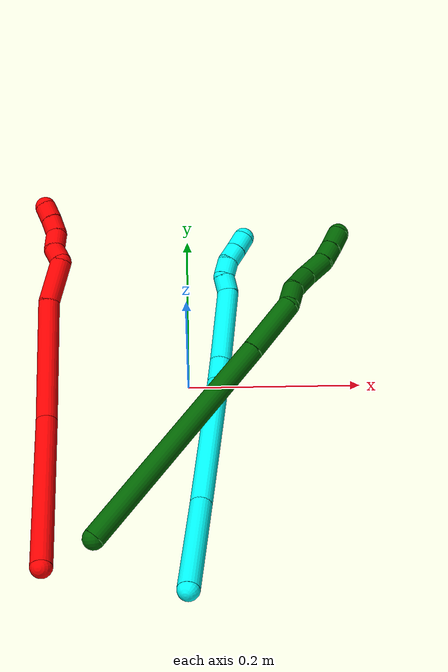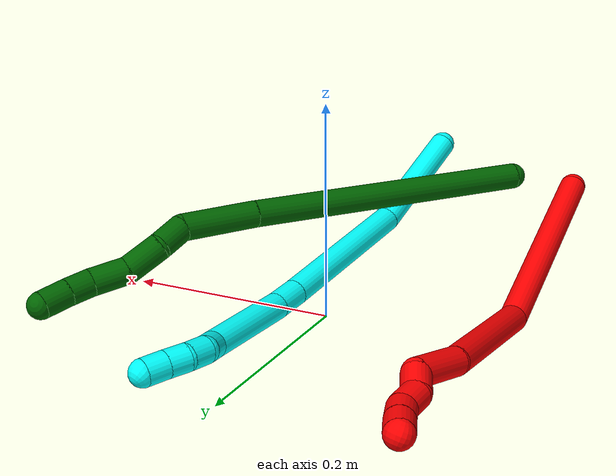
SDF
<sdf version="1.7">
 <world name="default">
  <model name="2">
   <static>0</static>
   <link name="2">
    <collision name="collision-cylinder-e_1_1_4">
     <pose>0.020892 0.07647 -0.069784 -2.31051 0.199134 -0.445302</pose>
     <geometry><cylinder><radius>0.0125</radius><length>0.211224</length></cylinder></geometry>
     <surface>
      <friction><ode><mu>1.16</mu><mu2>1.16</mu2><slip1>0</slip1><slip2>0</slip2></ode></friction>
      <contact><ode><kp>1e+06</kp><kd>1</kd><max_vel>0</max_vel><min_depth>0.001</min_depth></ode></contact>
     </surface>
    </collision>
    <visual name="visual-cylinder-e_1_1_4">
     <pose>0.020892 0.07647 -0.069784 -2.31051 0.199134 -0.445302</pose>
     <geometry><cylinder><radius>0.0125</radius><length>0.211224</length></cylinder></geometry>
     <material><ambient>1 0 0 1</ambient></material>
    </visual>
    <collision name="collision-cylinder-e_2_4_5">
     <pose>0.071623 0.216744 -0.161274 -1.89872 0.416801 -0.574312</pose>
     <geometry><cylinder><radius>0.0125</radius><length>0.147412</length></cylinder></geometry>
     <surface>
      <friction><ode><mu>1.16</mu><mu2>1.16</mu2><slip1>0</slip1><slip2>0</slip2></ode></friction>
      <contact><ode><kp>1e+06</kp><kd>1</kd><max_vel>0</max_vel><min_depth>0.001</min_depth></ode></contact>
     </surface>
    </collision>
    <visual name="visual-cylinder-e_2_4_5">
     <pose>0.071623 0.216744 -0.161274 -1.89872 0.416801 -0.574312</pose>
     <geometry><cylinder><radius>0.0125</radius><length>0.147412</length></cylinder></geometry>
     <material><ambient>1 0 0 1</ambient></material>
    </visual>
    <collision name="collision-cylinder-e_3_5_6">
     <pose>0.117778 0.299456 -0.191004 -1.97207 0.67132 -0.970003</pose>
     <geometry><cylinder><radius>0.0125</radius><length>0.052462</length></cylinder></geometry>
     <surface>
      <friction><ode><mu>1.16</mu><mu2>1.16</mu2><slip1>0</slip1><slip2>0</slip2></ode></friction>
      <contact><ode><kp>1e+06</kp><kd>1</kd><max_vel>0</max_vel><min_depth>0.001</min_depth></ode></contact>
     </surface>
    </collision>
    <visual name="visual-cylinder-e_3_5_6">
     <pose>0.117778 0.299456 -0.191004 -1.97207 0.67132 -0.970003</pose>
     <geometry><cylinder><radius>0.0125</radius><length>0.052462</length></cylinder></geometry>
     <material><ambient>1 0 0 1</ambient></material>
    </visual>
    <collision name="collision-cylinder-e_4_6_7">
     <pose>0.132892 0.328555 -0.205245 -2.11872 -0.100395 0.178554</pose>
     <geometry><cylinder><radius>0.0125</radius><length>0.024</length></cylinder></geometry>
     <surface>
      <friction><ode><mu>1.16</mu><mu2>1.16</mu2><slip1>0</slip1><slip2>0</slip2></ode></friction>
      <contact><ode><kp>1e+06</kp><kd>1</kd><max_vel>0</max_vel><min_depth>0.001</min_depth></ode></contact>
     </surface>
    </collision>
    <visual name="visual-cylinder-e_4_6_7">
     <pose>0.132892 0.328555 -0.205245 -2.11872 -0.100395 0.178554</pose>
     <geometry><cylinder><radius>0.0125</radius><length>0.024</length></cylinder></geometry>
     <material><ambient>1 0 0 1</ambient></material>
    </visual>
    <collision name="collision-cylinder-e_5_7_8">
     <pose>0.136376 0.347811 -0.217166 -2.1322 0.412532 -0.724153</pose>
     <geometry><cylinder><radius>0.0125</radius><length>0.023378</length></cylinder></geometry>
     <surface>
      <friction><ode><mu>1.16</mu><mu2>1.16</mu2><slip1>0</slip1><slip2>0</slip2></ode></friction>
      <contact><ode><kp>1e+06</kp><kd>1</kd><max_vel>0</max_vel><min_depth>0.001</min_depth></ode></contact>
     </surface>
    </collision>
    <visual name="visual-cylinder-e_5_7_8">
     <pose>0.136376 0.347811 -0.217166 -2.1322 0.412532 -0.724153</pose>
     <geometry><cylinder><radius>0.0125</radius><length>0.023378</length></cylinder></geometry>
     <material><ambient>1 0 0 1</ambient></material>
    </visual>
    <collision name="collision-cylinder-e_6_8_9">
     <pose>0.141906 0.366659 -0.22593 -1.8742 0.082114 -0.111697</pose>
     <geometry><cylinder><radius>0.0125</radius><length>0.020573</length></cylinder></geometry>
     <surface>
      <friction><ode><mu>1.16</mu><mu2>1.16</mu2><slip1>0</slip1><slip2>0</slip2></ode></friction>
      <contact><ode><kp>1e+06</kp><kd>1</kd><max_vel>0</max_vel><min_depth>0.001</min_depth></ode></contact>
     </surface>
    </collision>
    <visual name="visual-cylinder-e_6_8_9">
     <pose>0.141906 0.366659 -0.22593 -1.8742 0.082114 -0.111697</pose>
     <geometry><cylinder><radius>0.0125</radius><length>0.020573</length></cylinder></geometry>
     <material><ambient>1 0 0 1</ambient></material>
    </visual>
    <collision name="collision-cylinder-e_7_9_2">
     <pose>0.142867 0.386433 -0.232143 -1.87626 0.011246 -0.015338</pose>
     <geometry><cylinder><radius>0.0125</radius><length>0.020952</length></cylinder></geometry>
     <surface>
      <friction><ode><mu>1.16</mu><mu2>1.16</mu2><slip1>0</slip1><slip2>0</slip2></ode></friction>
      <contact><ode><kp>1e+06</kp><kd>1</kd><max_vel>0</max_vel><min_depth>0.001</min_depth></ode></contact>
     </surface>
    </collision>
    <visual name="visual-cylinder-e_7_9_2">
     <pose>0.142867 0.386433 -0.232143 -1.87626 0.011246 -0.015338</pose>
     <geometry><cylinder><radius>0.0125</radius><length>0.020952</length></cylinder></geometry>
     <material><ambient>1 0 0 1</ambient></material>
    </visual>
    <collision name="collision-sphere-2">
     <pose>0.142985 0.396423 -0.235293 0 -0 0</pose>
     <geometry><sphere><radius>0.0125</radius></sphere></geometry>
     <surface>
      <friction><ode><mu>1.16</mu><mu2>1.16</mu2><slip1>0</slip1><slip2>0</slip2></ode></friction>
      <contact><ode><kp>1e+06</kp><kd>1</kd><max_vel>0</max_vel><min_depth>0.001</min_depth></ode></contact>
     </surface>
    </collision>
    <visual name="visual-sphere-2">
     <pose>0.142985 0.396423 -0.235293 0 -0 0</pose>
     <geometry><sphere><radius>0.0125</radius></sphere></geometry>
     <material><ambient>1 0 0 1</ambient></material>
    </visual>
    <collision name="collision-sphere-9">
     <pose>0.142749 0.376443 -0.228992 0 -0 0</pose>
     <geometry><sphere><radius>0.0125</radius></sphere></geometry>
     <surface>
      <friction><ode><mu>1.16</mu><mu2>1.16</mu2><slip1>0</slip1><slip2>0</slip2></ode></friction>
      <contact><ode><kp>1e+06</kp><kd>1</kd><max_vel>0</max_vel><min_depth>0.001</min_depth></ode></contact>
     </surface>
    </collision>
    <visual name="visual-sphere-9">
     <pose>0.142749 0.376443 -0.228992 0 -0 0</pose>
     <geometry><sphere><radius>0.0125</radius></sphere></geometry>
     <material><ambient>1 0 0 1</ambient></material>
    </visual>
    <collision name="collision-sphere-4">
     <pose>0.041784 0.15294 -0.139568 0 -0 0</pose>
     <geometry><sphere><radius>0.0125</radius></sphere></geometry>
     <surface>
      <friction><ode><mu>1.16</mu><mu2>1.16</mu2><slip1>0</slip1><slip2>0</slip2></ode></friction>
      <contact><ode><kp>1e+06</kp><kd>1</kd><max_vel>0</max_vel><min_depth>0.001</min_depth></ode></contact>
     </surface>
    </collision>
    <visual name="visual-sphere-4">
     <pose>0.041784 0.15294 -0.139568 0 -0 0</pose>
     <geometry><sphere><radius>0.0125</radius></sphere></geometry>
     <material><ambient>1 0 0 1</ambient></material>
    </visual>
    <collision name="collision-sphere-1">
     <geometry><sphere><radius>0.0125</radius></sphere></geometry>
     <surface>
      <friction><ode><mu>1.16</mu><mu2>1.16</mu2><slip1>0</slip1><slip2>0</slip2></ode></friction>
      <contact><ode><kp>1e+06</kp><kd>1</kd><max_vel>0</max_vel><min_depth>0.001</min_depth></ode></contact>
     </surface>
    </collision>
    <visual name="visual-sphere-1">
     <geometry><sphere><radius>0.0125</radius></sphere></geometry>
     <material><ambient>1 0 0 1</ambient></material>
    </visual>
    <collision name="collision-sphere-8">
     <pose>0.141062 0.356876 -0.222867 0 -0 0</pose>
     <geometry><sphere><radius>0.0125</radius></sphere></geometry>
     <surface>
      <friction><ode><mu>1.16</mu><mu2>1.16</mu2><slip1>0</slip1><slip2>0</slip2></ode></friction>
      <contact><ode><kp>1e+06</kp><kd>1</kd><max_vel>0</max_vel><min_depth>0.001</min_depth></ode></contact>
     </surface>
    </collision>
    <visual name="visual-sphere-8">
     <pose>0.141062 0.356876 -0.222867 0 -0 0</pose>
     <geometry><sphere><radius>0.0125</radius></sphere></geometry>
     <material><ambient>1 0 0 1</ambient></material>
    </visual>
    <collision name="collision-sphere-5">
     <pose>0.101462 0.280548 -0.182981 0 -0 0</pose>
     <geometry><sphere><radius>0.0125</radius></sphere></geometry>
     <surface>
      <friction><ode><mu>1.16</mu><mu2>1.16</mu2><slip1>0</slip1><slip2>0</slip2></ode></friction>
      <contact><ode><kp>1e+06</kp><kd>1</kd><max_vel>0</max_vel><min_depth>0.001</min_depth></ode></contact>
     </surface>
    </collision>
    <visual name="visual-sphere-5">
     <pose>0.101462 0.280548 -0.182981 0 -0 0</pose>
     <geometry><sphere><radius>0.0125</radius></sphere></geometry>
     <material><ambient>1 0 0 1</ambient></material>
    </visual>
    <collision name="collision-sphere-6">
     <pose>0.134095 0.318363 -0.199026 0 -0 0</pose>
     <geometry><sphere><radius>0.0125</radius></sphere></geometry>
     <surface>
      <friction><ode><mu>1.16</mu><mu2>1.16</mu2><slip1>0</slip1><slip2>0</slip2></ode></friction>
      <contact><ode><kp>1e+06</kp><kd>1</kd><max_vel>0</max_vel><min_depth>0.001</min_depth></ode></contact>
     </surface>
    </collision>
    <visual name="visual-sphere-6">
     <pose>0.134095 0.318363 -0.199026 0 -0 0</pose>
     <geometry><sphere><radius>0.0125</radius></sphere></geometry>
     <material><ambient>1 0 0 1</ambient></material>
    </visual>
    <collision name="collision-sphere-7">
     <pose>0.131689 0.338746 -0.211465 0 -0 0</pose>
     <geometry><sphere><radius>0.0125</radius></sphere></geometry>
     <surface>
      <friction><ode><mu>1.16</mu><mu2>1.16</mu2><slip1>0</slip1><slip2>0</slip2></ode></friction>
      <contact><ode><kp>1e+06</kp><kd>1</kd><max_vel>0</max_vel><min_depth>0.001</min_depth></ode></contact>
     </surface>
    </collision>
    <visual name="visual-sphere-7">
     <pose>0.131689 0.338746 -0.211465 0 -0 0</pose>
     <geometry><sphere><radius>0.0125</radius></sphere></geometry>
     <material><ambient>1 0 0 1</ambient></material>
    </visual>
    <inertial>
     <pose>0.06688 0.190938 -0.136097 0 -0 0</pose>
     <mass>0.5</mass>
     <inertia>
      <ixx>0.000455</ixx>
      <ixy>0</ixy>
      <ixz>0</ixz>
      <iyy>-0.000898</iyy>
      <iyz>0</iyz>
      <izz>-0.001122</izz>
     </inertia>
    </inertial>
   </link>
   <pose>-0.155997 -0.246276 0.076869 0.306166 -0.378527 0.399296</pose>
  </model>
  <model name="3">
   <static>0</static>
   <link name="3">
    <collision name="collision-cylinder-e_1_1_4">
     <pose>-0.008019 0.012208 -0.061747 -2.9464 -0.126727 1.15</pose>
     <geometry><cylinder><radius>0.0125</radius><length>0.126901</length></cylinder></geometry>
     <surface>
      <friction><ode><mu>1.16</mu><mu2>1.16</mu2><slip1>0</slip1><slip2>0</slip2></ode></friction>
      <contact><ode><kp>1e+06</kp><kd>1</kd><max_vel>0</max_vel><min_depth>0.001</min_depth></ode></contact>
     </surface>
    </collision>
    <visual name="visual-cylinder-e_1_1_4">
     <pose>-0.008019 0.012208 -0.061747 -2.9464 -0.126727 1.15</pose>
     <geometry><cylinder><radius>0.0125</radius><length>0.126901</length></cylinder></geometry>
     <material><ambient>0.003922 1 0.996078 1</ambient></material>
    </visual>
    <collision name="collision-cylinder-e_2_4_5">
     <pose>-0.020043 0.05982 -0.197854 -2.69724 -0.048579 0.214259</pose>
     <geometry><cylinder><radius>0.0125</radius><length>0.164912</length></cylinder></geometry>
     <surface>
      <friction><ode><mu>1.16</mu><mu2>1.16</mu2><slip1>0</slip1><slip2>0</slip2></ode></friction>
      <contact><ode><kp>1e+06</kp><kd>1</kd><max_vel>0</max_vel><min_depth>0.001</min_depth></ode></contact>
     </surface>
    </collision>
    <visual name="visual-cylinder-e_2_4_5">
     <pose>-0.020043 0.05982 -0.197854 -2.69724 -0.048579 0.214259</pose>
     <geometry><cylinder><radius>0.0125</radius><length>0.164912</length></cylinder></geometry>
     <material><ambient>0.003922 1 0.996078 1</ambient></material>
    </visual>
    <collision name="collision-cylinder-e_3_5_6">
     <pose>-0.024737 0.102277 -0.285279 -2.64659 -0.046413 0.1832</pose>
     <geometry><cylinder><radius>0.0125</radius><length>0.029724</length></cylinder></geometry>
     <surface>
      <friction><ode><mu>1.16</mu><mu2>1.16</mu2><slip1>0</slip1><slip2>0</slip2></ode></friction>
      <contact><ode><kp>1e+06</kp><kd>1</kd><max_vel>0</max_vel><min_depth>0.001</min_depth></ode></contact>
     </surface>
    </collision>
    <visual name="visual-cylinder-e_3_5_6">
     <pose>-0.024737 0.102277 -0.285279 -2.64659 -0.046413 0.1832</pose>
     <geometry><cylinder><radius>0.0125</radius><length>0.029724</length></cylinder></geometry>
     <material><ambient>0.003922 1 0.996078 1</ambient></material>
    </visual>
    <collision name="collision-cylinder-e_4_6_7">
     <pose>-0.027013 0.135524 -0.338416 -2.56263 -0.03314 0.111161</pose>
     <geometry><cylinder><radius>0.0125</radius><length>0.095802</length></cylinder></geometry>
     <surface>
      <friction><ode><mu>1.16</mu><mu2>1.16</mu2><slip1>0</slip1><slip2>0</slip2></ode></friction>
      <contact><ode><kp>1e+06</kp><kd>1</kd><max_vel>0</max_vel><min_depth>0.001</min_depth></ode></contact>
     </surface>
    </collision>
    <visual name="visual-cylinder-e_4_6_7">
     <pose>-0.027013 0.135524 -0.338416 -2.56263 -0.03314 0.111161</pose>
     <geometry><cylinder><radius>0.0125</radius><length>0.095802</length></cylinder></geometry>
     <material><ambient>0.003922 1 0.996078 1</ambient></material>
    </visual>
    <collision name="collision-cylinder-e_5_7_8">
     <pose>-0.031432 0.169513 -0.384494 -2.22731 -0.280189 0.558396</pose>
     <geometry><cylinder><radius>0.0125</radius><length>0.020478</length></cylinder></geometry>
     <surface>
      <friction><ode><mu>1.16</mu><mu2>1.16</mu2><slip1>0</slip1><slip2>0</slip2></ode></friction>
      <contact><ode><kp>1e+06</kp><kd>1</kd><max_vel>0</max_vel><min_depth>0.001</min_depth></ode></contact>
     </surface>
    </collision>
    <visual name="visual-cylinder-e_5_7_8">
     <pose>-0.031432 0.169513 -0.384494 -2.22731 -0.280189 0.558396</pose>
     <geometry><cylinder><radius>0.0125</radius><length>0.020478</length></cylinder></geometry>
     <material><ambient>0.003922 1 0.996078 1</ambient></material>
    </visual>
    <collision name="collision-cylinder-e_6_8_9">
     <pose>-0.032998 0.183154 -0.399218 -2.55089 0.119933 -0.389657</pose>
     <geometry><cylinder><radius>0.0125</radius><length>0.021147</length></cylinder></geometry>
     <surface>
      <friction><ode><mu>1.16</mu><mu2>1.16</mu2><slip1>0</slip1><slip2>0</slip2></ode></friction>
      <contact><ode><kp>1e+06</kp><kd>1</kd><max_vel>0</max_vel><min_depth>0.001</min_depth></ode></contact>
     </surface>
    </collision>
    <visual name="visual-cylinder-e_6_8_9">
     <pose>-0.032998 0.183154 -0.399218 -2.55089 0.119933 -0.389657</pose>
     <geometry><cylinder><radius>0.0125</radius><length>0.021147</length></cylinder></geometry>
     <material><ambient>0.003922 1 0.996078 1</ambient></material>
    </visual>
    <collision name="collision-cylinder-e_7_9_10">
     <pose>-0.028309 0.192856 -0.41662 -2.72369 0.345952 -1.3784</pose>
     <geometry><cylinder><radius>0.0125</radius><length>0.020197</length></cylinder></geometry>
     <surface>
      <friction><ode><mu>1.16</mu><mu2>1.16</mu2><slip1>0</slip1><slip2>0</slip2></ode></friction>
      <contact><ode><kp>1e+06</kp><kd>1</kd><max_vel>0</max_vel><min_depth>0.001</min_depth></ode></contact>
     </surface>
    </collision>
    <visual name="visual-cylinder-e_7_9_10">
     <pose>-0.028309 0.192856 -0.41662 -2.72369 0.345952 -1.3784</pose>
     <geometry><cylinder><radius>0.0125</radius><length>0.020197</length></cylinder></geometry>
     <material><ambient>0.003922 1 0.996078 1</ambient></material>
    </visual>
    <collision name="collision-cylinder-e_8_10_2">
     <pose>-0.021718 0.2007 -0.434392 -2.72806 0.308739 -1.2765</pose>
     <geometry><cylinder><radius>0.0125</radius><length>0.020838</length></cylinder></geometry>
     <surface>
      <friction><ode><mu>1.16</mu><mu2>1.16</mu2><slip1>0</slip1><slip2>0</slip2></ode></friction>
      <contact><ode><kp>1e+06</kp><kd>1</kd><max_vel>0</max_vel><min_depth>0.001</min_depth></ode></contact>
     </surface>
    </collision>
    <visual name="visual-cylinder-e_8_10_2">
     <pose>-0.021718 0.2007 -0.434392 -2.72806 0.308739 -1.2765</pose>
     <geometry><cylinder><radius>0.0125</radius><length>0.020838</length></cylinder></geometry>
     <material><ambient>0.003922 1 0.996078 1</ambient></material>
    </visual>
    <collision name="collision-sphere-2">
     <pose>-0.018553 0.204689 -0.443482 0 -0 0</pose>
     <geometry><sphere><radius>0.0125</radius></sphere></geometry>
     <surface>
      <friction><ode><mu>1.16</mu><mu2>1.16</mu2><slip1>0</slip1><slip2>0</slip2></ode></friction>
      <contact><ode><kp>1e+06</kp><kd>1</kd><max_vel>0</max_vel><min_depth>0.001</min_depth></ode></contact>
     </surface>
    </collision>
    <visual name="visual-sphere-2">
     <pose>-0.018553 0.204689 -0.443482 0 -0 0</pose>
     <geometry><sphere><radius>0.0125</radius></sphere></geometry>
     <material><ambient>0.003922 1 0.996078 1</ambient></material>
    </visual>
    <collision name="collision-sphere-10">
     <pose>-0.024884 0.196711 -0.425302 0 -0 0</pose>
     <geometry><sphere><radius>0.0125</radius></sphere></geometry>
     <surface>
      <friction><ode><mu>1.16</mu><mu2>1.16</mu2><slip1>0</slip1><slip2>0</slip2></ode></friction>
      <contact><ode><kp>1e+06</kp><kd>1</kd><max_vel>0</max_vel><min_depth>0.001</min_depth></ode></contact>
     </surface>
    </collision>
    <visual name="visual-sphere-10">
     <pose>-0.024884 0.196711 -0.425302 0 -0 0</pose>
     <geometry><sphere><radius>0.0125</radius></sphere></geometry>
     <material><ambient>0.003922 1 0.996078 1</ambient></material>
    </visual>
    <collision name="collision-sphere-9">
     <pose>-0.031733 0.189 -0.407937 0 -0 0</pose>
     <geometry><sphere><radius>0.0125</radius></sphere></geometry>
     <surface>
      <friction><ode><mu>1.16</mu><mu2>1.16</mu2><slip1>0</slip1><slip2>0</slip2></ode></friction>
      <contact><ode><kp>1e+06</kp><kd>1</kd><max_vel>0</max_vel><min_depth>0.001</min_depth></ode></contact>
     </surface>
    </collision>
    <visual name="visual-sphere-9">
     <pose>-0.031733 0.189 -0.407937 0 -0 0</pose>
     <geometry><sphere><radius>0.0125</radius></sphere></geometry>
     <material><ambient>0.003922 1 0.996078 1</ambient></material>
    </visual>
    <collision name="collision-sphere-4">
     <pose>-0.016039 0.024416 -0.123493 0 -0 0</pose>
     <geometry><sphere><radius>0.0125</radius></sphere></geometry>
     <surface>
      <friction><ode><mu>1.16</mu><mu2>1.16</mu2><slip1>0</slip1><slip2>0</slip2></ode></friction>
      <contact><ode><kp>1e+06</kp><kd>1</kd><max_vel>0</max_vel><min_depth>0.001</min_depth></ode></contact>
     </surface>
    </collision>
    <visual name="visual-sphere-4">
     <pose>-0.016039 0.024416 -0.123493 0 -0 0</pose>
     <geometry><sphere><radius>0.0125</radius></sphere></geometry>
     <material><ambient>0.003922 1 0.996078 1</ambient></material>
    </visual>
    <collision name="collision-sphere-1">
     <geometry><sphere><radius>0.0125</radius></sphere></geometry>
     <surface>
      <friction><ode><mu>1.16</mu><mu2>1.16</mu2><slip1>0</slip1><slip2>0</slip2></ode></friction>
      <contact><ode><kp>1e+06</kp><kd>1</kd><max_vel>0</max_vel><min_depth>0.001</min_depth></ode></contact>
     </surface>
    </collision>
    <visual name="visual-sphere-1">
     <geometry><sphere><radius>0.0125</radius></sphere></geometry>
     <material><ambient>0.003922 1 0.996078 1</ambient></material>
    </visual>
    <collision name="collision-sphere-8">
     <pose>-0.034263 0.177307 -0.3905 0 -0 0</pose>
     <geometry><sphere><radius>0.0125</radius></sphere></geometry>
     <surface>
      <friction><ode><mu>1.16</mu><mu2>1.16</mu2><slip1>0</slip1><slip2>0</slip2></ode></friction>
      <contact><ode><kp>1e+06</kp><kd>1</kd><max_vel>0</max_vel><min_depth>0.001</min_depth></ode></contact>
     </surface>
    </collision>
    <visual name="visual-sphere-8">
     <pose>-0.034263 0.177307 -0.3905 0 -0 0</pose>
     <geometry><sphere><radius>0.0125</radius></sphere></geometry>
     <material><ambient>0.003922 1 0.996078 1</ambient></material>
    </visual>
    <collision name="collision-sphere-5">
     <pose>-0.024047 0.095224 -0.272215 0 -0 0</pose>
     <geometry><sphere><radius>0.0125</radius></sphere></geometry>
     <surface>
      <friction><ode><mu>1.16</mu><mu2>1.16</mu2><slip1>0</slip1><slip2>0</slip2></ode></friction>
      <contact><ode><kp>1e+06</kp><kd>1</kd><max_vel>0</max_vel><min_depth>0.001</min_depth></ode></contact>
     </surface>
    </collision>
    <visual name="visual-sphere-5">
     <pose>-0.024047 0.095224 -0.272215 0 -0 0</pose>
     <geometry><sphere><radius>0.0125</radius></sphere></geometry>
     <material><ambient>0.003922 1 0.996078 1</ambient></material>
    </visual>
    <collision name="collision-sphere-6">
     <pose>-0.025426 0.109329 -0.298343 0 -0 0</pose>
     <geometry><sphere><radius>0.0125</radius></sphere></geometry>
     <surface>
      <friction><ode><mu>1.16</mu><mu2>1.16</mu2><slip1>0</slip1><slip2>0</slip2></ode></friction>
      <contact><ode><kp>1e+06</kp><kd>1</kd><max_vel>0</max_vel><min_depth>0.001</min_depth></ode></contact>
     </surface>
    </collision>
    <visual name="visual-sphere-6">
     <pose>-0.025426 0.109329 -0.298343 0 -0 0</pose>
     <geometry><sphere><radius>0.0125</radius></sphere></geometry>
     <material><ambient>0.003922 1 0.996078 1</ambient></material>
    </visual>
    <collision name="collision-sphere-7">
     <pose>-0.0286 0.161719 -0.378488 0 -0 0</pose>
     <geometry><sphere><radius>0.0125</radius></sphere></geometry>
     <surface>
      <friction><ode><mu>1.16</mu><mu2>1.16</mu2><slip1>0</slip1><slip2>0</slip2></ode></friction>
      <contact><ode><kp>1e+06</kp><kd>1</kd><max_vel>0</max_vel><min_depth>0.001</min_depth></ode></contact>
     </surface>
    </collision>
    <visual name="visual-sphere-7">
     <pose>-0.0286 0.161719 -0.378488 0 -0 0</pose>
     <geometry><sphere><radius>0.0125</radius></sphere></geometry>
     <material><ambient>0.003922 1 0.996078 1</ambient></material>
    </visual>
    <inertial>
     <pose>-0.020024 0.085719 -0.230294 0 -0 0</pose>
     <mass>0.5</mass>
     <inertia>
      <ixx>0.00077</ixx>
      <ixy>0</ixy>
      <ixz>0</ixz>
      <iyy>-0.000207</iyy>
      <iyz>0</iyz>
      <izz>-0.000236</izz>
     </inertia>
    </inertial>
   </link>
   <pose>-0.001835 -0.279413 0.09388 0.977548 -0.278144 -0.139661</pose>
  </model>
  <model name="6">
   <static>0</static>
   <link name="6">
    <collision name="collision-cylinder-e_1_1_4">
     <pose>0.03664 0.105586 -0.084743 -2.24712 0.264298 -0.540682</pose>
     <geometry><cylinder><radius>0.0125</radius><length>0.280515</length></cylinder></geometry>
     <surface>
      <friction><ode><mu>1.16</mu><mu2>1.16</mu2><slip1>0</slip1><slip2>0</slip2></ode></friction>
      <contact><ode><kp>1e+06</kp><kd>1</kd><max_vel>0</max_vel><min_depth>0.001</min_depth></ode></contact>
     </surface>
    </collision>
    <visual name="visual-cylinder-e_1_1_4">
     <pose>0.03664 0.105586 -0.084743 -2.24712 0.264298 -0.540682</pose>
     <geometry><cylinder><radius>0.0125</radius><length>0.280515</length></cylinder></geometry>
     <material><ambient>0 0.392157 0.003922 1</ambient></material>
    </visual>
    <collision name="collision-cylinder-e_2_4_5">
     <pose>0.084012 0.237721 -0.191431 -2.26155 0.302035 -0.625252</pose>
     <geometry><cylinder><radius>0.0125</radius><length>0.072157</length></cylinder></geometry>
     <surface>
      <friction><ode><mu>1.16</mu><mu2>1.16</mu2><slip1>0</slip1><slip2>0</slip2></ode></friction>
      <contact><ode><kp>1e+06</kp><kd>1</kd><max_vel>0</max_vel><min_depth>0.001</min_depth></ode></contact>
     </surface>
    </collision>
    <visual name="visual-cylinder-e_2_4_5">
     <pose>0.084012 0.237721 -0.191431 -2.26155 0.302035 -0.625252</pose>
     <geometry><cylinder><radius>0.0125</radius><length>0.072157</length></cylinder></geometry>
     <material><ambient>0 0.392157 0.003922 1</ambient></material>
    </visual>
    <collision name="collision-cylinder-e_3_5_6">
     <pose>0.104866 0.270593 -0.221924 -2.5047 0.760885 -1.76281</pose>
     <geometry><cylinder><radius>0.0125</radius><length>0.029359</length></cylinder></geometry>
     <surface>
      <friction><ode><mu>1.16</mu><mu2>1.16</mu2><slip1>0</slip1><slip2>0</slip2></ode></friction>
      <contact><ode><kp>1e+06</kp><kd>1</kd><max_vel>0</max_vel><min_depth>0.001</min_depth></ode></contact>
     </surface>
    </collision>
    <visual name="visual-cylinder-e_3_5_6">
     <pose>0.104866 0.270593 -0.221924 -2.5047 0.760885 -1.76281</pose>
     <geometry><cylinder><radius>0.0125</radius><length>0.029359</length></cylinder></geometry>
     <material><ambient>0 0.392157 0.003922 1</ambient></material>
    </visual>
    <collision name="collision-cylinder-e_4_6_7">
     <pose>0.126839 0.288311 -0.236887 -2.08354 0.736212 -1.16637</pose>
     <geometry><cylinder><radius>0.0125</radius><length>0.035296</length></cylinder></geometry>
     <surface>
      <friction><ode><mu>1.16</mu><mu2>1.16</mu2><slip1>0</slip1><slip2>0</slip2></ode></friction>
      <contact><ode><kp>1e+06</kp><kd>1</kd><max_vel>0</max_vel><min_depth>0.001</min_depth></ode></contact>
     </surface>
    </collision>
    <visual name="visual-cylinder-e_4_6_7">
     <pose>0.126839 0.288311 -0.236887 -2.08354 0.736212 -1.16637</pose>
     <geometry><cylinder><radius>0.0125</radius><length>0.035296</length></cylinder></geometry>
     <material><ambient>0 0.392157 0.003922 1</ambient></material>
    </visual>
    <collision name="collision-cylinder-e_5_7_8">
     <pose>0.145323 0.313076 -0.250812 -2.08262 0.408332 -0.680103</pose>
     <geometry><cylinder><radius>0.0125</radius><length>0.033415</length></cylinder></geometry>
     <surface>
      <friction><ode><mu>1.16</mu><mu2>1.16</mu2><slip1>0</slip1><slip2>0</slip2></ode></friction>
      <contact><ode><kp>1e+06</kp><kd>1</kd><max_vel>0</max_vel><min_depth>0.001</min_depth></ode></contact>
     </surface>
    </collision>
    <visual name="visual-cylinder-e_5_7_8">
     <pose>0.145323 0.313076 -0.250812 -2.08262 0.408332 -0.680103</pose>
     <geometry><cylinder><radius>0.0125</radius><length>0.033415</length></cylinder></geometry>
     <material><ambient>0 0.392157 0.003922 1</ambient></material>
    </visual>
    <collision name="collision-cylinder-e_6_8_9">
     <pose>0.157519 0.3336 -0.265444 -2.35381 0.50352 -1.10839</pose>
     <geometry><cylinder><radius>0.0125</radius><length>0.023053</length></cylinder></geometry>
     <surface>
      <friction><ode><mu>1.16</mu><mu2>1.16</mu2><slip1>0</slip1><slip2>0</slip2></ode></friction>
      <contact><ode><kp>1e+06</kp><kd>1</kd><max_vel>0</max_vel><min_depth>0.001</min_depth></ode></contact>
     </surface>
    </collision>
    <visual name="visual-cylinder-e_6_8_9">
     <pose>0.157519 0.3336 -0.265444 -2.35381 0.50352 -1.10839</pose>
     <geometry><cylinder><radius>0.0125</radius><length>0.023053</length></cylinder></geometry>
     <material><ambient>0 0.392157 0.003922 1</ambient></material>
    </visual>
    <collision name="collision-cylinder-e_7_9_2">
     <pose>0.169909 0.348336 -0.280787 -2.39678 0.548189 -1.24775</pose>
     <geometry><cylinder><radius>0.0125</radius><length>0.026205</length></cylinder></geometry>
     <surface>
      <friction><ode><mu>1.16</mu><mu2>1.16</mu2><slip1>0</slip1><slip2>0</slip2></ode></friction>
      <contact><ode><kp>1e+06</kp><kd>1</kd><max_vel>0</max_vel><min_depth>0.001</min_depth></ode></contact>
     </surface>
    </collision>
    <visual name="visual-cylinder-e_7_9_2">
     <pose>0.169909 0.348336 -0.280787 -2.39678 0.548189 -1.24775</pose>
     <geometry><cylinder><radius>0.0125</radius><length>0.026205</length></cylinder></geometry>
     <material><ambient>0 0.392157 0.003922 1</ambient></material>
    </visual>
    <collision name="collision-sphere-2">
     <pose>0.176737 0.355916 -0.289009 0 -0 0</pose>
     <geometry><sphere><radius>0.0125</radius></sphere></geometry>
     <surface>
      <friction><ode><mu>1.16</mu><mu2>1.16</mu2><slip1>0</slip1><slip2>0</slip2></ode></friction>
      <contact><ode><kp>1e+06</kp><kd>1</kd><max_vel>0</max_vel><min_depth>0.001</min_depth></ode></contact>
     </surface>
    </collision>
    <visual name="visual-sphere-2">
     <pose>0.176737 0.355916 -0.289009 0 -0 0</pose>
     <geometry><sphere><radius>0.0125</radius></sphere></geometry>
     <material><ambient>0 0.392157 0.003922 1</ambient></material>
    </visual>
    <collision name="collision-sphere-9">
     <pose>0.163081 0.340756 -0.272565 0 -0 0</pose>
     <geometry><sphere><radius>0.0125</radius></sphere></geometry>
     <surface>
      <friction><ode><mu>1.16</mu><mu2>1.16</mu2><slip1>0</slip1><slip2>0</slip2></ode></friction>
      <contact><ode><kp>1e+06</kp><kd>1</kd><max_vel>0</max_vel><min_depth>0.001</min_depth></ode></contact>
     </surface>
    </collision>
    <visual name="visual-sphere-9">
     <pose>0.163081 0.340756 -0.272565 0 -0 0</pose>
     <geometry><sphere><radius>0.0125</radius></sphere></geometry>
     <material><ambient>0 0.392157 0.003922 1</ambient></material>
    </visual>
    <collision name="collision-sphere-4">
     <pose>0.073279 0.211172 -0.169485 0 -0 0</pose>
     <geometry><sphere><radius>0.0125</radius></sphere></geometry>
     <surface>
      <friction><ode><mu>1.16</mu><mu2>1.16</mu2><slip1>0</slip1><slip2>0</slip2></ode></friction>
      <contact><ode><kp>1e+06</kp><kd>1</kd><max_vel>0</max_vel><min_depth>0.001</min_depth></ode></contact>
     </surface>
    </collision>
    <visual name="visual-sphere-4">
     <pose>0.073279 0.211172 -0.169485 0 -0 0</pose>
     <geometry><sphere><radius>0.0125</radius></sphere></geometry>
     <material><ambient>0 0.392157 0.003922 1</ambient></material>
    </visual>
    <collision name="collision-sphere-1">
     <geometry><sphere><radius>0.0125</radius></sphere></geometry>
     <surface>
      <friction><ode><mu>1.16</mu><mu2>1.16</mu2><slip1>0</slip1><slip2>0</slip2></ode></friction>
      <contact><ode><kp>1e+06</kp><kd>1</kd><max_vel>0</max_vel><min_depth>0.001</min_depth></ode></contact>
     </surface>
    </collision>
    <visual name="visual-sphere-1">
     <geometry><sphere><radius>0.0125</radius></sphere></geometry>
     <material><ambient>0 0.392157 0.003922 1</ambient></material>
    </visual>
    <collision name="collision-sphere-8">
     <pose>0.151958 0.326444 -0.258322 0 -0 0</pose>
     <geometry><sphere><radius>0.0125</radius></sphere></geometry>
     <surface>
      <friction><ode><mu>1.16</mu><mu2>1.16</mu2><slip1>0</slip1><slip2>0</slip2></ode></friction>
      <contact><ode><kp>1e+06</kp><kd>1</kd><max_vel>0</max_vel><min_depth>0.001</min_depth></ode></contact>
     </surface>
    </collision>
    <visual name="visual-sphere-8">
     <pose>0.151958 0.326444 -0.258322 0 -0 0</pose>
     <geometry><sphere><radius>0.0125</radius></sphere></geometry>
     <material><ambient>0 0.392157 0.003922 1</ambient></material>
    </visual>
    <collision name="collision-sphere-5">
     <pose>0.094744 0.26427 -0.213377 0 -0 0</pose>
     <geometry><sphere><radius>0.0125</radius></sphere></geometry>
     <surface>
      <friction><ode><mu>1.16</mu><mu2>1.16</mu2><slip1>0</slip1><slip2>0</slip2></ode></friction>
      <contact><ode><kp>1e+06</kp><kd>1</kd><max_vel>0</max_vel><min_depth>0.001</min_depth></ode></contact>
     </surface>
    </collision>
    <visual name="visual-sphere-5">
     <pose>0.094744 0.26427 -0.213377 0 -0 0</pose>
     <geometry><sphere><radius>0.0125</radius></sphere></geometry>
     <material><ambient>0 0.392157 0.003922 1</ambient></material>
    </visual>
    <collision name="collision-sphere-6">
     <pose>0.114989 0.276915 -0.230471 0 -0 0</pose>
     <geometry><sphere><radius>0.0125</radius></sphere></geometry>
     <surface>
      <friction><ode><mu>1.16</mu><mu2>1.16</mu2><slip1>0</slip1><slip2>0</slip2></ode></friction>
      <contact><ode><kp>1e+06</kp><kd>1</kd><max_vel>0</max_vel><min_depth>0.001</min_depth></ode></contact>
     </surface>
    </collision>
    <visual name="visual-sphere-6">
     <pose>0.114989 0.276915 -0.230471 0 -0 0</pose>
     <geometry><sphere><radius>0.0125</radius></sphere></geometry>
     <material><ambient>0 0.392157 0.003922 1</ambient></material>
    </visual>
    <collision name="collision-sphere-7">
     <pose>0.138689 0.299707 -0.243302 0 -0 0</pose>
     <geometry><sphere><radius>0.0125</radius></sphere></geometry>
     <surface>
      <friction><ode><mu>1.16</mu><mu2>1.16</mu2><slip1>0</slip1><slip2>0</slip2></ode></friction>
      <contact><ode><kp>1e+06</kp><kd>1</kd><max_vel>0</max_vel><min_depth>0.001</min_depth></ode></contact>
     </surface>
    </collision>
    <visual name="visual-sphere-7">
     <pose>0.138689 0.299707 -0.243302 0 -0 0</pose>
     <geometry><sphere><radius>0.0125</radius></sphere></geometry>
     <material><ambient>0 0.392157 0.003922 1</ambient></material>
    </visual>
    <inertial>
     <pose>0.073671 0.184345 -0.148639 0 -0 0</pose>
     <mass>0.5</mass>
     <inertia>
      <ixx>0.000627</ixx>
      <ixy>0</ixy>
      <ixz>0</ixz>
      <iyy>-0.001731</iyy>
      <iyz>0</iyz>
      <izz>-0.001955</izz>
     </inertia>
    </inertial>
   </link>
   <pose>-0.10084 -0.219633 0.087927 -2.95193 1.03749 1.92763</pose>
  </model>
 </world>
</sdf>
